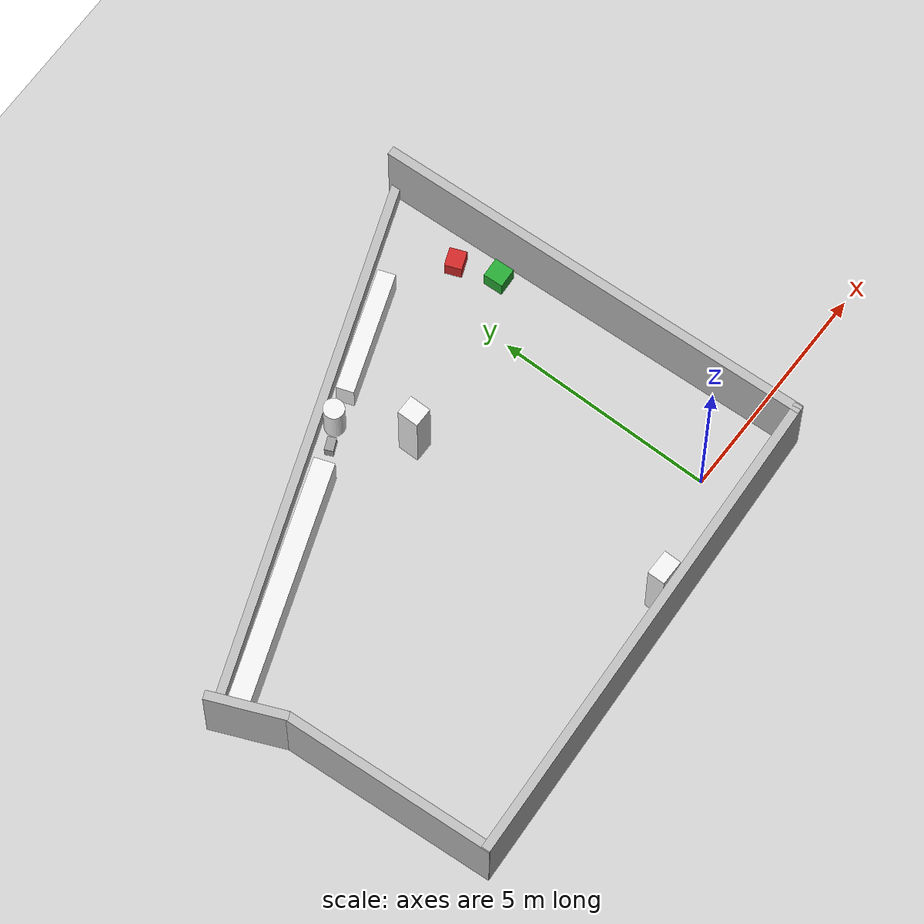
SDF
<sdf version="1.4">
 <world name="default">
  <physics type="ode">
   <gravity>0 0 -9.81</gravity>
   <ode>
    <solver><type>quick</type><iters>50</iters><sor>1.4</sor></solver>
    <constraints>
     <cfm>0.0</cfm>
     <erp>0.2</erp>
     <contact_max_correcting_vel>100.0</contact_max_correcting_vel>
     <contact_surface_layer>0.0</contact_surface_layer>
    </constraints>
   </ode>
   <real_time_update_rate>1000</real_time_update_rate>
   <max_step_size>0.001</max_step_size>
  </physics>
  <include><uri>model://sun</uri></include>
  <include><uri>model://ground_plane</uri></include>
  <model name="wall_1">
   <pose>-3.723560 -1.231870 1.000000 0 0 0.053006</pose>
   <static>1</static>
   <link name="wall_1_body">
    <collision name="collision"><geometry><box><size>11.284800 0.2 2.0</size></box></geometry></collision>
    <visual name="visual"><geometry><box><size>11.284800 0.2 2.0</size></box></geometry></visual>
    <velocity_decay><linear>0</linear><angular>0</angular></velocity_decay>
   </link>
  </model>
  <model name="wall_2">
   <pose>-4.38328 6.82901 0.25 0 -0 0.346061</pose>
   <static>1</static>
   <link name="wall_2_body">
    <collision name="collision"><geometry><box><size>12.456 0.2 0.5</size></box></geometry></collision>
    <visual name="visual"><geometry><box><size>12.456 0.2 0.5</size></box></geometry></visual>
   </link>
  </model>
  <model name="wall_3">
   <pose>-9.4051 0.82099 1 0 0 0.054201</pose>
   <static>1</static>
   <link name="wall_3_body">
    <collision name="collision"><geometry><box><size>0.2 4.898110 2.0</size></box></geometry></collision>
    <visual name="visual"><geometry><box><size>0.2 4.898110 2.0</size></box></geometry></visual>
    <velocity_decay><linear>0</linear><angular>0</angular></velocity_decay>
   </link>
  </model>
  <model name="wall_4">
   <pose>1.59865 4.01391 1 0 0 0.047287</pose>
   <static>1</static>
   <link name="wall_4_body">
    <collision name="collision"><geometry><box><size>0.2 10.078400 2.0</size></box></geometry></collision>
    <visual name="visual"><geometry><box><size>0.2 10.078400 2.0</size></box></geometry></visual>
   </link>
  </model>
  <model name="wall_5">
   <pose>-9.86261 4.02557 1 0 0 -1.17761</pose>
   <static>1</static>
   <link name="wall_5_body">
    <collision name="collision"><geometry><box><size>1.754480 0.2 2.0</size></box></geometry></collision>
    <visual name="visual"><geometry><box><size>1.754480 0.2 2.0</size></box></geometry></visual>
   </link>
  </model>
  <model name="water_machine">
   <pose>-3.56398 6.74263 0.506361 0 -0 0.001955</pose>
   <static>1</static>
   <link name="link">
    <collision name="collision">
     <geometry><cylinder><radius>0.23</radius><length>1.01274</length></cylinder></geometry>
    </collision>
    <visual name="visual">
     <geometry><cylinder><radius>0.23</radius><length>1.01274</length></cylinder></geometry>
     <material>
      <script><name>Gazebo/White</name><uri>file://media/materials/scripts/gazebo.material</uri></script>
     </material>
    </visual>
   </link>
  </model>
  <model name="coffee_table">
   <pose>-1.73576 7.33308 0.375 0.0 -0 0.336027</pose>
   <static>1</static>
   <link name="link">
    <collision name="collision"><geometry><box><size>2.74216 0.39611 0.75</size></box></geometry></collision>
    <visual name="visual">
     <geometry><box><size>2.74216 0.39611 0.75</size></box></geometry>
     <material>
      <script><name>Gazebo/White</name><uri>file://media/materials/scripts/gazebo.material</uri></script>
     </material>
    </visual>
   </link>
  </model>
  <model name="green_seat">
   <pose>1.04558 6.00716 0.236198 -1e-06 0 0.05094</pose>
   <static>1</static>
   <link name="link">
    <collision name="collision">
     <geometry><box><size>0.435931 0.447539 0.472395</size></box></geometry>
    </collision>
    <visual name="visual">
     <geometry><box><size>0.435931 0.447539 0.472395</size></box></geometry>
     <material>
      <script><name>Gazebo/Green</name><uri>file://media/materials/scripts/gazebo.material</uri></script>
     </material>
    </visual>
   </link>
  </model>
  <model name="red_seat">
   <pose>0.766426 6.9157 0.22067 3e-06 1e-06 0.368472</pose>
   <static>1</static>
   <link name="link">
    <collision name="collision"><geometry><box><size>0.41336 0.379962 0.441339</size></box></geometry></collision>
    <visual name="visual">
     <geometry><box><size>0.41336 0.379962 0.441339</size></box></geometry>
     <material>
      <script><name>Gazebo/Red</name><uri>file://media/materials/scripts/gazebo.material</uri></script>
     </material>
    </visual>
   </link>
  </model>
  <model name="small_bin">
   <pose>-4.00908 6.50656 0.149094 4e-06 -6e-06 0.410459</pose>
   <static>1</static>
   <link name="link">
    <collision name="collision">
     <geometry><box><size>0.305271 0.197006 0.298191</size></box></geometry>
    </collision>
    <visual name="visual">
     <geometry><box><size>0.305271 0.197006 0.298191</size></box></geometry>
     <material>
      <script><name>Gazebo/Grey</name><uri>file://media/materials/scripts/gazebo.material</uri></script>
     </material>
    </visual>
   </link>
  </model>
  <model name="sink_table_and_fridge">
   <pose>-7.19361 5.30171 0.46 0.0 0.0 0.33562</pose>
   <static>1</static>
   <link name="link">
    <collision name="collision"><geometry><box><size>5.61828 0.465636 0.92</size></box></geometry></collision>
    <visual name="visual">
     <geometry><box><size>5.61828 0.465636 0.92</size></box></geometry>
     <material>
      <script><name>Gazebo/White</name><uri>file://media/materials/scripts/gazebo.material</uri></script>
     </material>
    </visual>
   </link>
  </model>
  <model name="central_column">
   <pose>-2.91028 5.17288 1.0 0.0 0.0 -0.000405</pose>
   <static>1</static>
   <link name="link">
    <collision name="collision"><geometry><box><size>0.43796 0.488825 2.0</size></box></geometry></collision>
    <visual name="visual">
     <geometry><box><size>0.43796 0.488825 2.0</size></box></geometry>
     <material>
      <script><name>Gazebo/White</name><uri>file://media/materials/scripts/gazebo.material</uri></script>
     </material>
    </visual>
   </link>
  </model>
  <model name="side_column">
   <pose>-2.5349 -0.83907 1.0 0 -0 0.000313</pose>
   <static>1</static>
   <link name="link">
    <collision name="collision"><geometry><box><size>0.572146 0.400179 2.0</size></box></geometry></collision>
    <visual name="visual">
     <geometry><box><size>0.572146 0.400179 2.0</size></box></geometry>
     <material>
      <script><name>Gazebo/White</name><uri>file://media/materials/scripts/gazebo.material</uri></script>
     </material>
    </visual>
   </link>
  </model>
  <scene><ambient>0.4 0.4 0.4 1</ambient><background>0.7 0.7 0.7 1</background><shadows>false</shadows></scene>
 </world>
</sdf>
